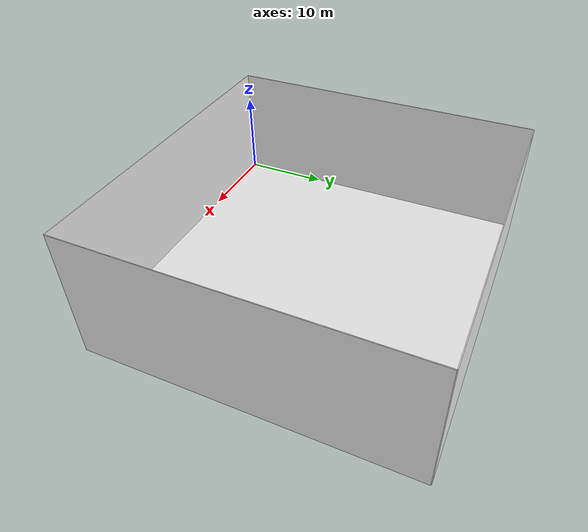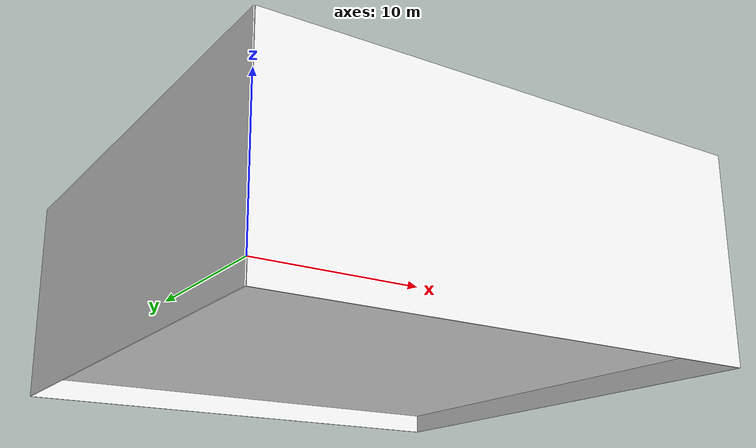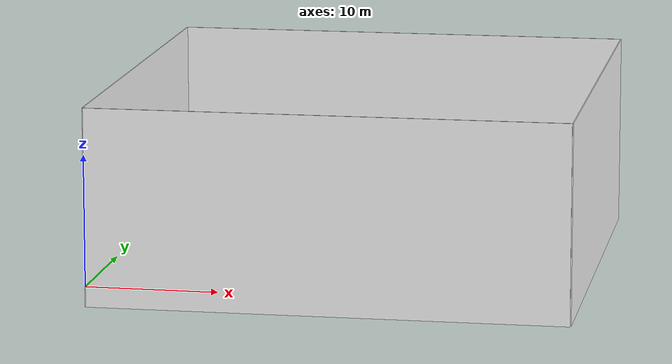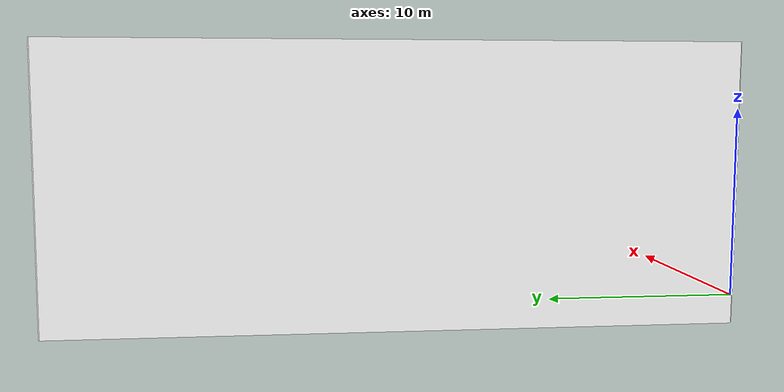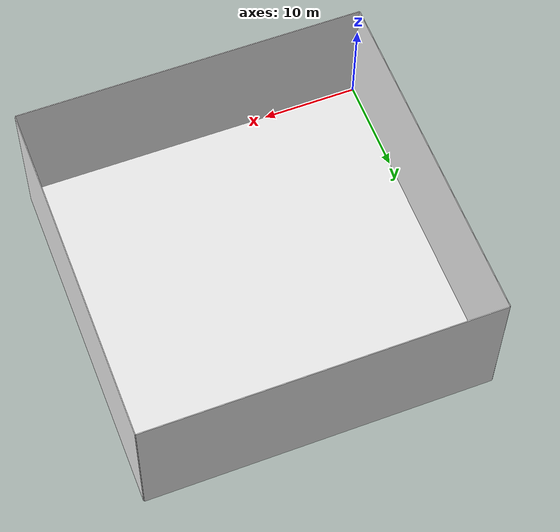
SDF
<?xml version='1.0'?>
<sdf version='1.6'>
  <model name='basement_tank_model'>
    <static>true</static>
    <link name='basement_tank'>
      <inertial>
        <mass>1</mass>
      </inertial>

      <collision name='bottom'>
        <laser_retro>50</laser_retro>
        <pose frame=''>18 18 0.02 0 -0 0</pose>
        <geometry>
          <box>
            <size>36 36 0.04</size>
          </box>
        </geometry>
      </collision>
      <visual name='visual1'>
        <laser_retro>50</laser_retro>
        <pose frame=''>18 18 0.02 0 -0 0</pose>
        <geometry>
          <box>
            <size>36 36 0.04</size>
          </box>
        </geometry>
        <material>
          <script>
            <uri>file://usr/share/gz/gz-sim8/media/gazebo.material</uri>
            <name>Gazebo/White</name>
          </script>
        </material>
      </visual>

      <collision name='left_side'>
        <laser_retro>50</laser_retro>
        <pose frame=''>-0.04 18 6 0 -0 0</pose>
        <geometry>
          <box>
            <size>0.08 36 15</size>
          </box>
        </geometry>
      </collision>
      <visual name='visual2'>
        <laser_retro>50</laser_retro>
        <pose frame=''>-0.04 18 6 0 -0 0</pose>
        <geometry>
          <box>
            <size>0.08 36 15</size>
          </box>
        </geometry>
        <material>
          <script>
            <uri>file://usr/share/gz/gz-sim8/media/gazebo.material</uri>
            <name>Gazebo/White</name>
          </script>
        </material>
      </visual>

      <collision name='right_side'>
        <laser_retro>50</laser_retro>
        <pose frame=''>36.04 18 6 0 -0 0</pose>
        <geometry>
          <box>
            <size>0.08 36 15</size>
          </box>
        </geometry>
      </collision>
      <visual name='visual3'>
        <laser_retro>50</laser_retro>
        <pose frame=''>36.04 18 6 0 -0 0</pose>
        <geometry>
          <box>
            <size>0.08 36 15</size>
          </box>
        </geometry>
        <material>
          <script>
            <uri>file://usr/share/gz/gz-sim8/media/gazebo.material</uri>
            <name>Gazebo/White</name>
          </script>
        </material>
      </visual>

      <collision name='front_side'>
        <laser_retro>50</laser_retro>
        <pose frame=''>18 -0.04 6 0 -0 0</pose>
        <geometry>
          <box>
            <size>36 0.08 15</size>
          </box>
        </geometry>
      </collision>
      <visual name='visual4'>
        <laser_retro>50</laser_retro>
        <pose frame=''>18 -0.04 6 0 -0 0</pose>
        <geometry>
          <box>
            <size>36 0.08 15</size>
          </box>
        </geometry>
        <material>
          <script>
            <uri>file://usr/share/gz/gz-sim8/media/gazebo.material</uri>
            <name>Gazebo/White</name>
          </script>
        </material>
      </visual>

      <collision name='back_side'>
        <laser_retro>50</laser_retro>
        <pose frame=''>18 36.04 6 0 -0 0</pose>
        <geometry>
          <box>
            <size>36 0.08 15</size>
          </box>
        </geometry>
      </collision>
      <visual name='visual5'>
        <laser_retro>50</laser_retro>
        <pose frame=''>18 36.04 6 0 -0 0</pose>
        <geometry>
          <box>
            <size>36 0.08 15</size>
          </box>
        </geometry>
        <material>
          <script>
            <uri>file://usr/share/gz/gz-sim8/media/gazebo.material</uri>
            <name>Gazebo/White</name>
          </script>
        </material>
      </visual>
    </link>
  </model>
</sdf>
